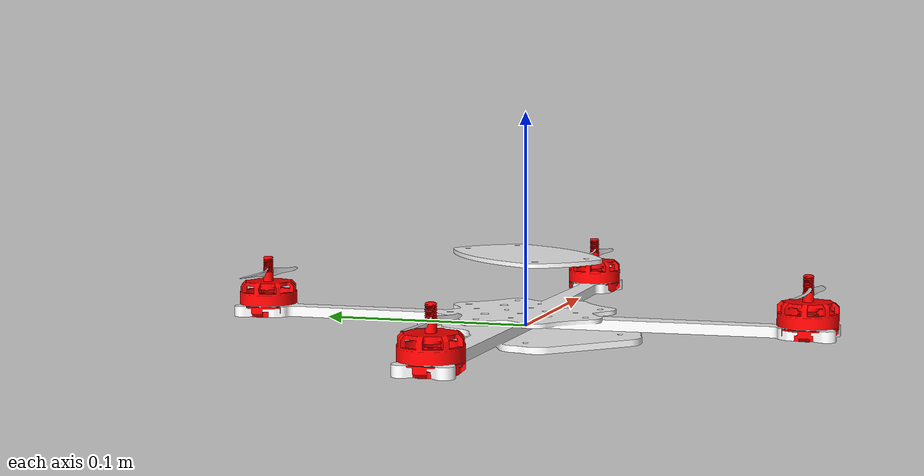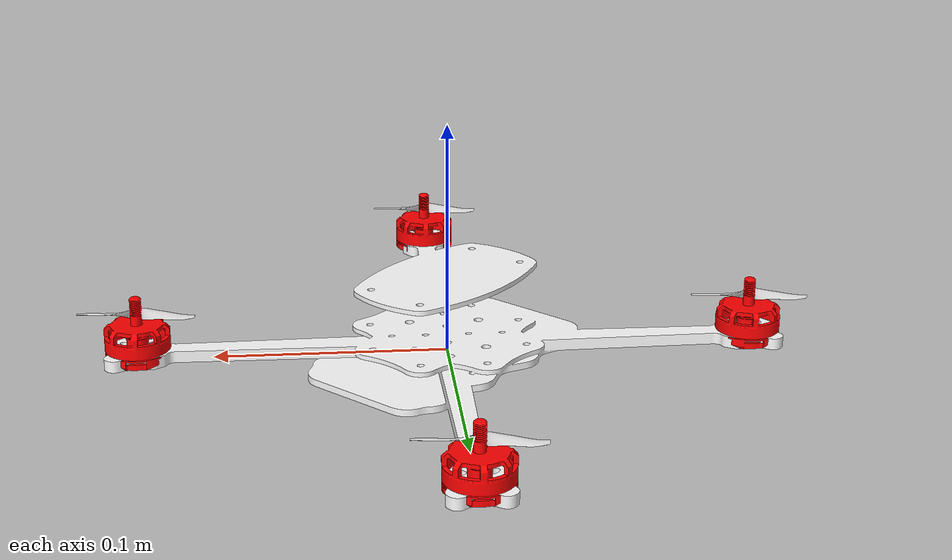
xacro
<?xml version="1.0"?>
<robot xmlns:xacro="http://www.ros.org/wiki/xacro" name="my_robot">

  <link name="base_link">
    <visual>
      <origin rpy="0 0 0.7854"/>
      <geometry>
        <mesh filename="package://drone_sim/meshes/drone.stl" scale="0.001 0.001 0.001"/>
      </geometry>
      <material name="Gray">
        <color rgba="1.0 1.0 1.0 1.0"/>
      </material>
    </visual>

    <collision>
      <origin rpy="0 0 0.7854"/>
      <geometry>
        <mesh filename="package://drone_sim/meshes/drone.stl" scale="0.001 0.001 0.001"/>
      </geometry>
    </collision>

    <inertial>
      <origin rpy="0 0 0.7854"/>
      <mass value="1.2"/>
      <inertia ixx="1" ixy="0.0" ixz="0.0" iyy="1" iyz="0.0" izz="1"/>
    </inertial>
  </link>

  <xacro:macro name="motor" params="name x y">
    <link name="${name}">
      <inertial>
        <origin rpy="0 0 0"/>
        <mass value="0.0001"/>
        <inertia ixx="0.0001" ixy="0.0" ixz="0.0" iyy="0.0001" iyz="0.0" izz="0.0001"/>
      </inertial>

      <visual>
        <origin rpy="1.57 0 0" xyz="0 0 0.01"/>
        <geometry>
           <mesh filename="package://drone_sim/meshes/motor.stl" scale="0.001 0.001 0.001"/>
        </geometry>
        <material name="Red">
          <color rgba="1.0 0.0 0.0 1.0"/>
        </material>
      </visual>
    </link>

    <joint name="${name}_joint" type="fixed">
      <parent link="base_link"/>
      <child link="${name}"/>
      <origin xyz="${x} ${y} 0.0" rpy="0 0 0"/>
    </joint>
  </xacro:macro>

    <xacro:macro name="propeller" params="name motor">
    <link name="${name}">
      <inertial>
        <origin rpy="0 0 0"/>
        <mass value="0.000001"/>
        <inertia ixx="0.00000001" ixy="0.0" ixz="0.0" iyy="0.00000001" iyz="0.0" izz="0.00000001"/>
      </inertial>

      <visual>
        <origin rpy="1.57 0 0" xyz="0 0 0.0208"/>
        <geometry>
           <mesh filename="package://drone_sim/meshes/prop.stl" scale="0.001 0.001 0.001"/>
        </geometry>
        <material name="Black">
          <color rgba="0.8 0.8 0.8 1.0"/>
        </material>
      </visual>
    </link>

    <joint name="${name}_joint" type="continuous">
      <parent link="${motor}"/>
      <child link="${name}"/>
      <origin xyz="0 0 0.0" rpy="0 0 0"/>
      <axis xyz="0 0 1"/>
    </joint>
  </xacro:macro>

  <xacro:motor name="motor1" x="0.13181" y="0"/>
  <xacro:motor name="motor2" x="0" y="0.13181"/>
  <xacro:motor name="motor3" x="-0.13181" y="0"/>
  <xacro:motor name="motor4" x="0" y="-0.13181"/>

  <xacro:propeller name="prop1" motor="motor1"/>
  <xacro:propeller name="prop2" motor="motor2"/>
  <xacro:propeller name="prop3" motor="motor3"/>
  <xacro:propeller name="prop4" motor="motor4"/>

  <xacro:include filename="$(find drone_sim)/urdf/gazebo.urdf.xacro"/>
  <xacro:include filename="$(find drone_sim)/urdf/sensors.urdf.xacro"/>

</robot>
